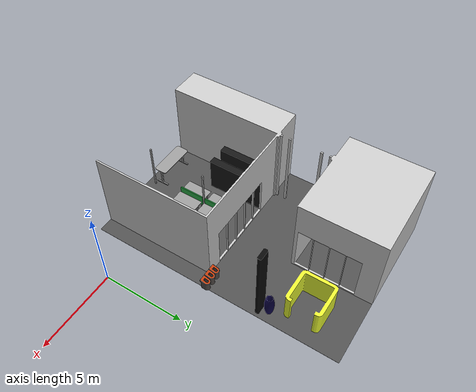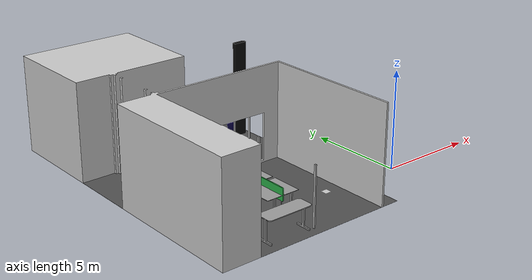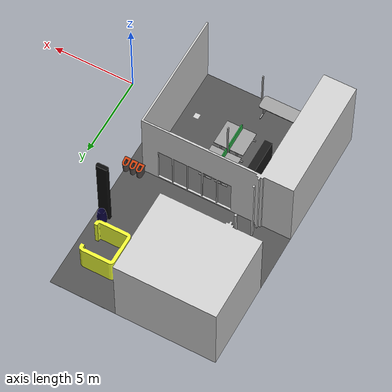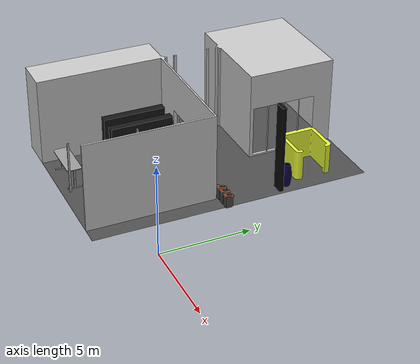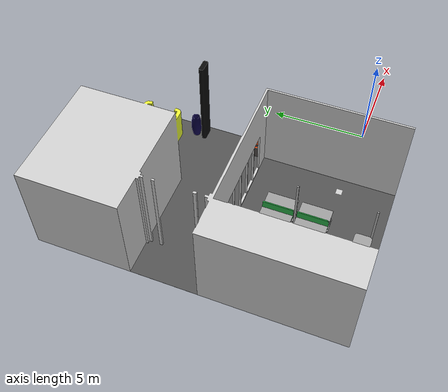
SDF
<sdf version="1.4">
 <world name="office">
  <light type="directional" name="sun">
   <pose>0 0 10 0 0 0</pose>
   <diffuse>0.8 0.8 0.8 1</diffuse>
   <specular>0.2 0.2 0.2 1</specular>
   <attenuation>
    <range>1000</range>
    <constant>0.9</constant>
    <linear>0.01</linear>
    <quadratic>0.001</quadratic>
   </attenuation>
   <direction>-0.5 0.1 -0.9</direction>
  </light>
  <model name="hallway">
   <pose>-4.35 0.38 0  0 0 0</pose>
   <static>true</static>
   <link name="link">
    <collision name="collision"><geometry><mesh><uri>file://hallway.dae</uri></mesh></geometry></collision>
    <visual name="visual"><geometry><mesh><uri>file://hallway.dae</uri></mesh></geometry></visual>
   </link>
  </model>
  <model name="plant_pot">
   <pose>-3 8.63 0  0 0 0</pose>
   <static>true</static>
   <link name="link">
    <collision name="collision"><geometry><mesh><uri>file://plant_pot.dae</uri></mesh></geometry></collision>
    <visual name="visual"><geometry><mesh><uri>file://plant_pot.dae</uri></mesh></geometry></visual>
   </link>
  </model>
  <model name="trash_can_0">
   <pose>-3.28 4.75 0  0 0 3.14</pose>
   <static>true</static>
   <link name="link">
    <collision name="collision"><geometry><mesh><uri>file://trash_can.dae</uri></mesh></geometry></collision>
    <visual name="visual"><geometry><mesh><uri>file://trash_can.dae</uri></mesh></geometry></visual>
   </link>
  </model>
  <model name="trash_can_1">
   <pose>-2.87 4.75 0  0 0 3.14</pose>
   <static>true</static>
   <link name="link">
    <collision name="collision"><geometry><mesh><uri>file://trash_can.dae</uri></mesh></geometry></collision>
    <visual name="visual"><geometry><mesh><uri>file://trash_can.dae</uri></mesh></geometry></visual>
   </link>
  </model>
  <model name="trash_can_2">
   <pose>-2.43 4.75 0  0 0 3.14</pose>
   <static>true</static>
   <link name="link">
    <collision name="collision"><geometry><mesh><uri>file://trash_can.dae</uri></mesh></geometry></collision>
    <visual name="visual"><geometry><mesh><uri>file://trash_can.dae</uri></mesh></geometry></visual>
   </link>
  </model>
  <model name="table_0">
   <pose>-6.43 3.41 0  0 0 -1.57</pose>
   <static>true</static>
   <link name="link">
    <collision name="collision"><geometry><mesh><uri>file://table.dae</uri></mesh></geometry></collision>
    <visual name="visual"><geometry><mesh><uri>file://table.dae</uri></mesh></geometry></visual>
   </link>
  </model>
  <model name="table_1">
   <pose>-7.42 3.41 0  0 0 -1.57</pose>
   <static>true</static>
   <link name="link">
    <collision name="collision"><geometry><mesh><uri>file://table.dae</uri></mesh></geometry></collision>
    <visual name="visual"><geometry><mesh><uri>file://table.dae</uri></mesh></geometry></visual>
   </link>
  </model>
  <model name="table_2">
   <pose>-6.43 1.63 0  0 0 -1.57</pose>
   <static>true</static>
   <link name="link">
    <collision name="collision"><geometry><mesh><uri>file://table.dae</uri></mesh></geometry></collision>
    <visual name="visual"><geometry><mesh><uri>file://table.dae</uri></mesh></geometry></visual>
   </link>
  </model>
  <model name="table_3">
   <pose>-7.42 1.63 0  0 0 -1.57</pose>
   <static>true</static>
   <link name="link">
    <collision name="collision"><geometry><mesh><uri>file://table.dae</uri></mesh></geometry></collision>
    <visual name="visual"><geometry><mesh><uri>file://table.dae</uri></mesh></geometry></visual>
   </link>
  </model>
  <model name="divider_0">
   <pose>-6.93 2.61 0  0 0 -1.57</pose>
   <static>true</static>
   <link name="link">
    <collision name="collision"><geometry><mesh><uri>file://divider.dae</uri></mesh></geometry></collision>
    <visual name="visual"><geometry><mesh><uri>file://divider.dae</uri></mesh></geometry></visual>
   </link>
  </model>
  <model name="divider_1">
   <pose>-6.93 0.83 0  0 0 -1.57</pose>
   <static>true</static>
   <link name="link">
    <collision name="collision"><geometry><mesh><uri>file://divider.dae</uri></mesh></geometry></collision>
    <visual name="visual"><geometry><mesh><uri>file://divider.dae</uri></mesh></geometry></visual>
   </link>
  </model>
  <model name="pillar_0">
   <pose>-6.93 1.73 0  0 0 0</pose>
   <static>true</static>
   <link name="link">
    <collision name="collision"><geometry><mesh><uri>file://pillar.dae</uri></mesh></geometry></collision>
    <visual name="visual"><geometry><mesh><uri>file://pillar.dae</uri></mesh></geometry></visual>
   </link>
  </model>
  <model name="pillar_1">
   <pose>-7.035 -2.1 0  0 0 0</pose>
   <static>true</static>
   <link name="link">
    <collision name="collision"><geometry><mesh><uri>file://pillar.dae</uri></mesh></geometry></collision>
    <visual name="visual"><geometry><mesh><uri>file://pillar.dae</uri></mesh></geometry></visual>
   </link>
  </model>
  <model name="big_table_0">
   <pose>-9.59 -1.32 0  0 0 0</pose>
   <static>true</static>
   <link name="link">
    <collision name="collision"><geometry><mesh><uri>file://big_table.dae</uri></mesh></geometry></collision>
    <visual name="visual"><geometry><mesh><uri>file://big_table.dae</uri></mesh></geometry></visual>
   </link>
  </model>
 </world>
</sdf>
